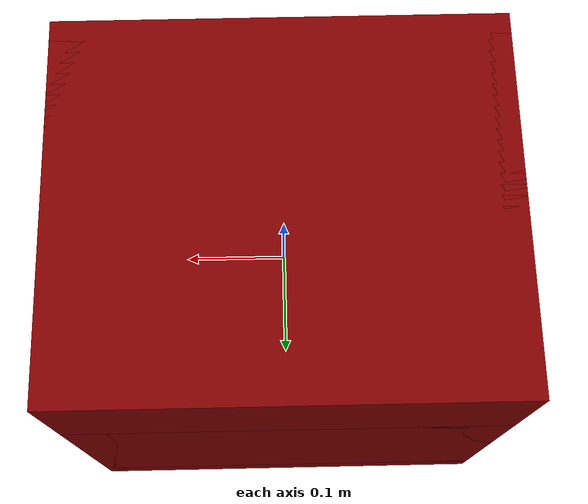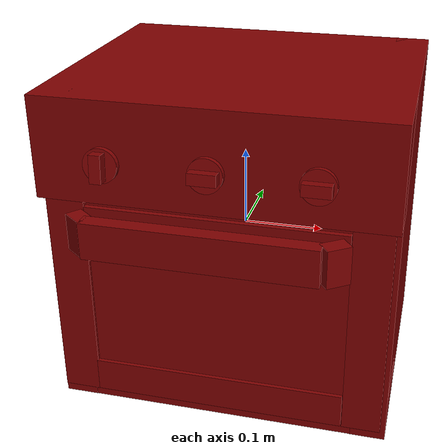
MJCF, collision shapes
<?xml version='1.0' encoding='UTF-8'?>
<mujoco model="model">
  <option timestep="0.002" gravity="0.0 0.0 -9.81"/>
  <compiler angle="radian"/>
  <asset>
    <mesh file="visuals/Body001.obj" name="Body001_vis"/>
    <mesh file="visuals/Door001.obj" name="Door001_vis"/>
    <mesh file="visuals/Door001_Clear.obj" name="Door001_Clear_vis"/>
    <mesh file="visuals/Knob001.obj" name="Knob001_vis"/>
    <mesh file="visuals/Knob002.obj" name="Knob002_vis"/>
    <mesh file="visuals/Knob003.obj" name="Knob003_vis"/>
    <mesh file="visuals/Shelf001.obj" name="Shelf001_vis"/>
    <mesh file="visuals/Shelf002.obj" name="Shelf002_vis"/>
    <texture file="visuals/T_BC001.png" name="Body001_material" type="2d"/>
    <material name="Body001_material" rgba="1 1 1 1.0" texture="Body001_material" shininess="0.1" specular="3"/>
    <texture file="visuals/T_BC001.png" name="Door001_material" type="2d"/>
    <material name="Door001_material" rgba="1 1 1 1.0" texture="Door001_material" shininess="0.1" specular="3"/>
    <material name="Door001_Clear_material" rgba="0.1393265575170517 0.1393265575170517 0.1393265575170517 0.800000011920929" shininess="0.141421377658844" specular="0.3103448502657381"/>
    <texture file="visuals/T_BC001.png" name="Knob001_material" type="2d"/>
    <material name="Knob001_material" rgba="1 1 1 1.0" texture="Knob001_material" shininess="0.1" specular="1"/>
    <texture file="visuals/T_BC001.png" name="Knob002_material" type="2d"/>
    <material name="Knob002_material" rgba="1 1 1 1.0" texture="Knob002_material" shininess="0.1" specular="1"/>
    <texture file="visuals/T_BC001.png" name="Knob003_material" type="2d"/>
    <material name="Knob003_material" rgba="1 1 1 1.0" texture="Knob003_material" shininess="0.1" specular="1"/>
    <texture file="visuals/T_BC001.png" name="Shelf001_material" type="2d"/>
    <material name="Shelf001_material" rgba="1 1 1 1.0" texture="Shelf001_material" shininess="0.1" specular="3"/>
    <texture file="visuals/T_BC001.png" name="Shelf002_material" type="2d"/>
    <material name="Shelf002_material" rgba="1 1 1 1.0" texture="Shelf002_material" shininess="0.1" specular="3"/>
  </asset>
  <default>
    <default class="visual">
      <geom conaffinity="0" contype="0" group="1" type="mesh"/>
    </default>
    <default class="collision">
      <geom group="0" rgba="0.5 0 0 0.5"/>
    </default>
    <default class="spawn">
      <geom group="0" rgba="1 1 1 0.5" contype="0" conaffinity="0"/>
      <site group="0" rgba="1 1 1 0.5"/>
    </default>
    <default class="region">
      <geom group="1" conaffinity="0" contype="0" rgba="0 1 0 0"/>
    </default>
  </default>
  <worldbody>
    <body>
      <body name="object">
        <geom mesh="Body001_vis" type="mesh" solimp="0.998 0.998 0.001" solref="0.001 1" friction="0.95 0.3 0.1" class="visual" material="Body001_material"/>
        <geom class="collision" type="box" pos="-0.1874837875366211 0.026811806485056877 0.0" size="0.020771218463778496 0.1672239899635315 0.20594462752342224" quat="1.0 0.0 0.0 0.0" density="1000.0"/>
        <geom class="collision" type="box" pos="0.18700549006462097 0.026811806485056877 0.0" size="0.021249497309327126 0.1672239899635315 0.20594462752342224" quat="1.0 0.0 0.0 0.0" density="1000.0"/>
        <geom class="collision" type="box" pos="8.789356797933578e-09 0.016620097681879997 0.14449644088745117" size="0.20825499296188354 0.17741572856903076 0.06144820898771286" quat="1.0 0.0 0.0 0.0" density="1000.0"/>
        <geom class="collision" type="box" pos="0.00025702844141051173 0.027008790522813797 -0.1787743866443634" size="0.20799796283245087 0.16702699661254883 0.027170265093445778" quat="1.0 0.0 0.0 0.0" density="1000.0"/>
        <geom class="collision" type="box" pos="0.00025702844141051173 0.17990824580192566 -0.043512456119060516" size="0.20799796283245087 0.014127550646662712 0.1305772215127945" quat="1.0 0.0 0.0 0.0" density="1000.0"/>
        <geom class="collision" type="box" pos="-0.000648923683911562 0.027934810146689415 0.06522655487060547" size="0.1770261526107788 0.16610097885131836 0.01704905927181244" quat="1.0 0.0 0.0 0.0" density="1000.0"/>
        <body name="Door001">
          <joint axis="1.0 0.0 0.0" pos="-0.0009480697335675359 -0.14243395626544952 -0.1853238195180893" limited="true" name="Door001_joint" range="0.0 1.5707963267948966" type="hinge" damping="1" frictionloss="1" armature=".01" stiffness="0.5" springref="-2"/>
          <geom mesh="Door001_vis" type="mesh" solimp="0.998 0.998 0.001" solref="0.001 1" friction="0.95 0.3 0.1" class="visual" material="Door001_material"/>
          <geom class="collision" type="box" pos="-0.17858800292015076 -0.14943307638168335 -0.05319732800126076" size="0.023277537897229195 0.003489644033834338 0.1325230598449707" quat="1.0 0.0 0.0 0.0" density="1000.0"/>
          <geom class="collision" type="box" pos="-0.008240824565291405 -0.1842663437128067 0.0504692979156971" size="0.1365979164838791 0.010008696466684341 0.02265879698097706" quat="1.0 0.0 0.0 0.0" density="1000.0"/>
          <geom class="collision" type="box" pos="0.14149928092956543 -0.1769859939813614 0.0504692979156971" size="0.014707278460264206 0.010008696466684341 0.02265879698097706" quat="0.9516586661338806 0.0 0.0 0.30715760588645935" density="1000.0"/>
          <geom class="collision" type="box" pos="-0.1499558538198471 -0.17579878866672516 0.0504692979156971" size="0.01470727939158678 0.010008696466684341 0.02265879698097706" quat="0.9452030062675476 0.0 -0.0 -0.32648321986198425" density="1000.0"/>
          <geom class="collision" type="box" pos="0.17924343049526215 -0.14943307638168335 -0.05319732800126076" size="0.023277442902326584 0.003489644033834338 0.1325230598449707" quat="1.0 0.0 0.0 0.0" density="1000.0"/>
          <geom class="collision" type="box" pos="-0.0008527578320354223 -0.14943307638168335 -0.1641571819782257" size="0.15587900578975677 0.0034896505530923605 0.021389998495578766" quat="1.0 0.0 0.0 0.0" density="1000.0"/>
          <geom class="collision" type="box" pos="-0.0008527741301804781 -0.14943307638168335 0.04952442646026611" size="0.15587900578975677 0.0034896472934633493 0.02327738329768181" quat="1.0 0.0 0.0 0.0" density="1000.0"/>
          <body name="Door001_Clear">
            <geom mesh="Door001_Clear_vis" type="mesh" solimp="0.998 0.998 0.001" solref="0.001 1" friction="0.95 0.3 0.1" class="visual" material="Door001_Clear_material"/>
            <geom class="collision" type="box" pos="-0.0001274426467716694 -0.14573422074317932 -0.059385985136032104" size="0.15996190905570984 0.002195133827626705 0.08756429702043533" quat="1.0 0.0 0.0 0.0" density="1000.0"/>
          </body>
        </body>
        <body name="Knob001">
          <joint axis="0.0 0.9948404431343079 -0.10145170241594315" pos="-0.12121830880641937 -0.17436178028583527 0.13543511927127838" limited="true" name="Knob001_joint" range="0.0 4.101523742186674" type="hinge" damping="0.05" armature="0.001" springref="-0.01"/>
          <geom mesh="Knob001_vis" type="mesh" solimp="0.998 0.998 0.001" solref="0.001 1" friction="0.95 0.3 0.1" class="visual" material="Knob001_material"/>
          <geom class="collision" type="cylinder" pos="-0.12118957936763763 -0.1701522320508957 0.13511914014816284" size="0.020189691334962845 0.0036164524499326944" quat="0.7346668839454651 0.6784279942512512 0.0 0.0" density="1000.0"/>
          <geom class="collision" type="box" pos="-0.12128126621246338 -0.18049398064613342 0.13571631908416748" size="0.006779917515814304 0.006625317968428135 0.01627395674586296" quat="0.9992089867591858 -0.03976695239543915 -0.0 0.0" density="1000.0"/>
        </body>
        <body name="Knob002">
          <joint axis="0.0 0.9932048320770264 -0.11637987196445465" pos="-0.001569606363773346 -0.17436178028583527 0.13543511927127838" limited="true" name="Knob002_joint" range="0.0 3.1764992386296798" type="hinge" damping="0.05" armature="0.001" springref="-0.01"/>
          <geom mesh="Knob002_vis" type="mesh" solimp="0.998 0.998 0.001" solref="0.001 1" friction="0.95 0.3 0.1" class="visual" material="Knob002_material"/>
          <geom class="collision" type="cylinder" pos="-0.0018204126972705126 -0.1701522320508957 0.13511914014816284" size="0.020189691334962845 0.0036164524499326944" quat="0.7346668839454651 0.6784279942512512 0.0 0.0" density="1000.0"/>
          <geom class="collision" type="box" pos="-0.0019121025688946247 -0.18049398064613342 0.13571631908416748" size="0.006779917515814304 0.006625317968428135 0.01627395674586296" quat="0.7065474390983582 -0.028119519352912903 0.7065474390983582 -0.028119519352912903" density="1000.0"/>
        </body>
        <body name="Knob003">
          <joint axis="0.0 0.994629442691803 -0.1034993901848793" pos="0.12010540068149567 -0.17436178028583527 0.13543511927127838" limited="true" name="Knob003_joint" range="0.0 4.014257279586958" type="hinge" damping="0.05" armature="0.001" springref="-0.01"/>
          <geom mesh="Knob003_vis" type="mesh" solimp="0.998 0.998 0.001" solref="0.001 1" friction="0.95 0.3 0.1" class="visual" material="Knob003_material"/>
          <geom class="collision" type="cylinder" pos="0.12000693380832672 -0.1701522320508957 0.13511914014816284" size="0.020189691334962845 0.0036164524499326944" quat="0.7346668839454651 0.6784279942512512 0.0 0.0" density="1000.0"/>
          <geom class="collision" type="box" pos="0.11991524696350098 -0.18049398064613342 0.13571631908416748" size="0.006779917515814304 0.006625317968428135 0.01627395674586296" quat="0.7065474390983582 -0.028119519352912903 0.7065474390983582 -0.028119519352912903" density="1000.0"/>
        </body>
        <body name="Shelf001">
          <joint axis="0.0 -1.0 -1.4210856409267898e-14" pos="-0.00014749751426279545 0.013972731307148933 -0.02170417457818985" limited="true" name="Shelf001_joint" range="0.0 0.22" type="slide" damping="1" frictionloss="1" armature=".01" stiffness="0.05"/>
          <geom mesh="Shelf001_vis" type="mesh" solimp="0.998 0.998 0.001" solref="0.001 1" friction="0.95 0.3 0.1" class="visual" material="Shelf001_material"/>
          <geom class="collision" type="box" pos="-0.00023768586106598377 0.00671611912548542 -0.02167222462594509" size="0.16346873342990875 0.12698295712471008 0.005708746612071991" quat="1.0 0.0 0.0 0.0" density="1000.0"/>
        </body>
        <body name="Shelf002">
          <joint axis="0.0 -1.0 -1.4210856409267898e-14" pos="-0.00014749751426279545 0.013972732238471508 -0.08481291681528091" limited="true" name="Shelf002_joint" range="0.0 0.22" type="slide" damping="1" frictionloss="1" armature=".01" stiffness="0.05"/>
          <geom mesh="Shelf002_vis" type="mesh" solimp="0.998 0.998 0.001" solref="0.001 1" friction="0.95 0.3 0.1" class="visual" material="Shelf002_material"/>
          <geom class="collision" type="box" pos="-0.00023768586106598377 0.00671611912548542 -0.08417201787233353" size="0.16346873342990875 0.12698295712471008 0.005708746612071991" quat="1.0 0.0 0.0 0.0" density="1000.0"/>
        </body>
        <geom class="region" name="reg_int" type="box" pos="-0.0001945197582244873 0.015341214835643768 -0.05040242336690426" size="0.17487937211990356 0.15655551105737686 0.10160424746572971"/>
        <geom class="region" name="reg_main" type="box" pos="0.0 0.014361098408699036 0.0" size="0.20825499296188354 0.17967469990253448 0.20594464242458344"/>
      </body>
    </body>
  </worldbody>
  <actuator>
    <motor name="Door001_joint_actuator" joint="Door001_joint" gear="50"/>
    <motor name="Knob001_joint_actuator" joint="Knob001_joint" gear="50"/>
    <motor name="Knob002_joint_actuator" joint="Knob002_joint" gear="50"/>
    <motor name="Knob003_joint_actuator" joint="Knob003_joint" gear="50"/>
    <motor name="Shelf001_joint_actuator" joint="Shelf001_joint" gear="50"/>
    <motor name="Shelf002_joint_actuator" joint="Shelf002_joint" gear="50"/>
  </actuator>
</mujoco>
